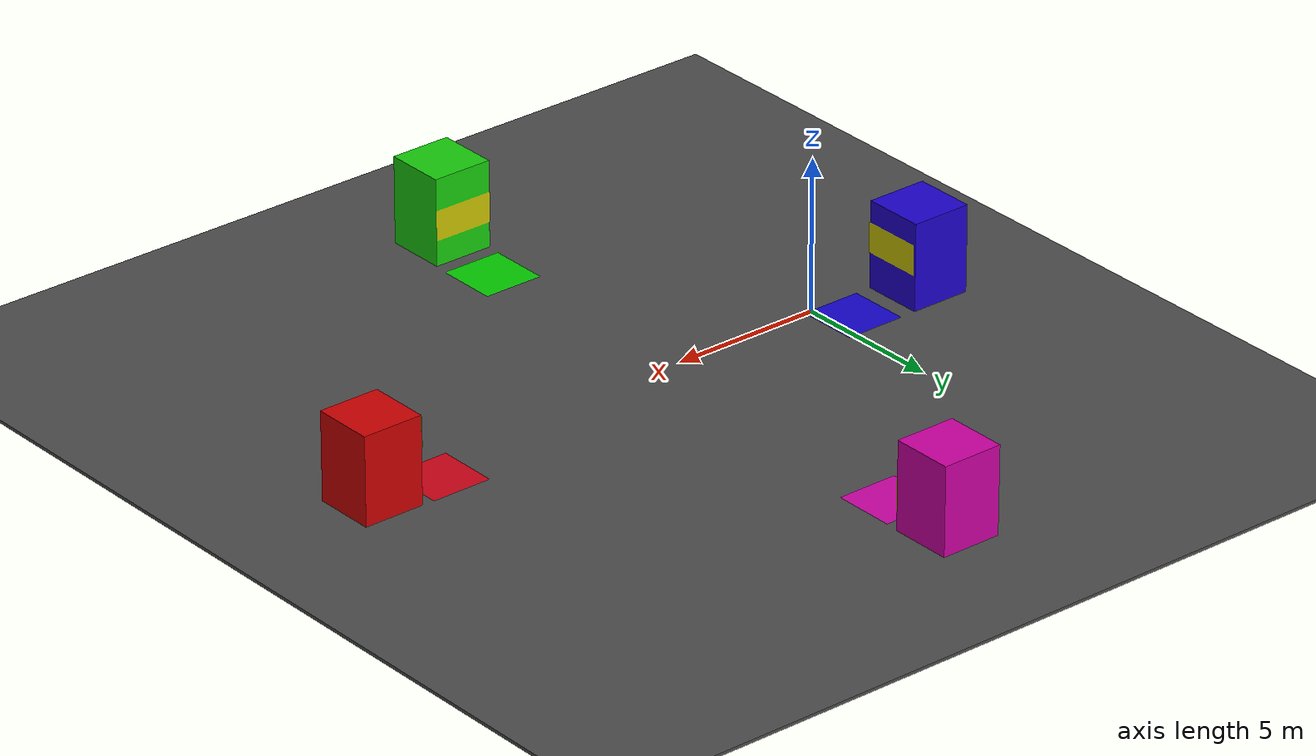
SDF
<sdf version="1.7">
 <world name="default">
  <light name="sun" type="directional">
   <pose>0 0 10 0 -0 0</pose>
   <diffuse>0.8 0.8 0.8 1</diffuse>
   <specular>0.2 0.2 0.2 1</specular>
   <attenuation>
    <range>1000</range>
    <constant>0.9</constant>
    <linear>0.01</linear>
    <quadratic>0.001</quadratic>
   </attenuation>
   <direction>-0.5 0.1 -0.9</direction>
   <spot><inner_angle>0</inner_angle><outer_angle>0</outer_angle><falloff>0</falloff></spot>
  </light>
  <model name="ground_plane">
   <static>1</static>
   <link name="link">
    <collision name="collision">
     <geometry><plane><normal>0 0 1</normal><size>100 100</size></plane></geometry>
     <surface>
      <contact><collide_bitmask>65535</collide_bitmask></contact>
      <friction><ode><mu>100</mu><mu2>50</mu2></ode></friction>
     </surface>
    </collision>
    <visual name="visual">
     <cast_shadows>0</cast_shadows>
     <geometry><plane><normal>0 0 1</normal><size>100 100</size></plane></geometry>
     <material>
      <script><uri>file://media/materials/scripts/gazebo.material</uri><name>Gazebo/Grey</name></script>
     </material>
    </visual>
   </link>
  </model>
  <model name="asphalt_plane">
   <static>1</static>
   <link name="link">
    <collision name="collision"><geometry><box><size>200 200 0.1</size></box></geometry></collision>
    <visual name="visual">
     <cast_shadows>0</cast_shadows>
     <geometry><box><size>200 200 0.1</size></box></geometry>
     <material>
      <script>
       <uri>model://asphalt_plane/materials/scripts</uri>
       <uri>model://asphalt_plane/materials/textures</uri>
       <name>vrc/asphalt</name>
      </script>
     </material>
    </visual>
   </link>
  </model>
  <model name="Arena KRTI 2020 1.5 Kali Lipat">
   <pose>5.50983 0.979914 0.06 0 -0 3.14159</pose>
   <static>1</static>
   <link name="link">
    <collision name="collision">
     <geometry><mesh><uri>model://temp_world/meshes/mesh.dae</uri></mesh></geometry>
    </collision>
    <visual name="visual"><geometry><mesh><uri>model://temp_world/meshes/mesh.dae</uri></mesh></geometry></visual>
   </link>
  </model>
  <physics name="default_physics" default="0" type="ode">
   <ode>
    <solver>
     <type>quick</type>
     <iters>10</iters>
     <sor>1.3</sor>
     <use_dynamic_moi_rescaling>0</use_dynamic_moi_rescaling>
    </solver>
    <constraints>
     <cfm>0</cfm>
     <erp>0.2</erp>
     <contact_max_correcting_vel>100</contact_max_correcting_vel>
     <contact_surface_layer>0.001</contact_surface_layer>
    </constraints>
   </ode>
   <max_step_size>0.004</max_step_size>
   <real_time_factor>1</real_time_factor>
   <real_time_update_rate>250</real_time_update_rate>
  </physics>
  <gravity>0 0 -9.8066</gravity>
  <magnetic_field>6e-06 2.3e-05 -4.2e-05</magnetic_field>
  <atmosphere type="adiabatic"/>
  <scene><ambient>0.4 0.4 0.4 1</ambient><background>0.7 0.7 0.7 1</background><shadows>1</shadows></scene>
  <spherical_coordinates>
   <surface_model>EARTH_WGS84</surface_model>
   <latitude_deg>0</latitude_deg>
   <longitude_deg>0</longitude_deg>
   <elevation>0</elevation>
   <heading_deg>0</heading_deg>
  </spherical_coordinates>
  <light name="user_directional_light_0" type="directional">
   <pose>3.0938 1.9335 1 0 -0 0</pose>
   <diffuse>0.5 0.5 0.5 1</diffuse>
   <specular>0.1 0.1 0.1 1</specular>
   <direction>0.1 0.1 -0.9</direction>
   <attenuation>
    <range>20</range>
    <constant>0.5</constant>
    <linear>0.01</linear>
    <quadratic>0.001</quadratic>
   </attenuation>
  </light>
  <light name="user_directional_light_1" type="directional">
   <pose>1.4728 -1.0825 1 0 -0 0</pose>
   <diffuse>0.5 0.5 0.5 1</diffuse>
   <specular>0.1 0.1 0.1 1</specular>
   <direction>0.1 0.1 -0.9</direction>
   <attenuation>
    <range>20</range>
    <constant>0.5</constant>
    <linear>0.01</linear>
    <quadratic>0.001</quadratic>
   </attenuation>
  </light>
  <light name="user_directional_light_2" type="directional">
   <pose>-0.928265 3.931 1 0 -0 0</pose>
   <diffuse>0.5 0.5 0.5 1</diffuse>
   <specular>0.1 0.1 0.1 1</specular>
   <direction>0.1 0.1 -0.9</direction>
   <attenuation>
    <range>20</range>
    <constant>0.5</constant>
    <linear>0.01</linear>
    <quadratic>0.001</quadratic>
   </attenuation>
  </light>
  <light name="user_directional_light_3" type="directional">
   <pose>1.17158 1.29039 1 0 -0 0</pose>
   <diffuse>0.5 0.5 0.5 1</diffuse>
   <specular>0.1 0.1 0.1 1</specular>
   <direction>0.1 0.1 -0.9</direction>
   <attenuation>
    <range>20</range>
    <constant>0.5</constant>
    <linear>0.01</linear>
    <quadratic>0.001</quadratic>
   </attenuation>
  </light>
  <light name="user_directional_light_4" type="directional">
   <pose>4.23079 -2.24866 1 0 -0 0</pose>
   <diffuse>0.5 0.5 0.5 1</diffuse>
   <specular>0.1 0.1 0.1 1</specular>
   <direction>0.1 0.1 -0.9</direction>
   <attenuation>
    <range>20</range>
    <constant>0.5</constant>
    <linear>0.01</linear>
    <quadratic>0.001</quadratic>
   </attenuation>
  </light>
  <light name="user_directional_light_5" type="directional">
   <pose>-3.89399 6.07404 1 0 -0 0</pose>
   <diffuse>0.5 0.5 0.5 1</diffuse>
   <specular>0.1 0.1 0.1 1</specular>
   <direction>0.1 0.1 -0.9</direction>
   <attenuation>
    <range>20</range>
    <constant>0.5</constant>
    <linear>0.01</linear>
    <quadratic>0.001</quadratic>
   </attenuation>
  </light>
  <light name="user_directional_light_6" type="directional">
   <pose>4.62613 -3.35621 1 0 -0 0</pose>
   <diffuse>0.5 0.5 0.5 1</diffuse>
   <specular>0.1 0.1 0.1 1</specular>
   <direction>0.1 0.1 -0.9</direction>
   <attenuation>
    <range>20</range>
    <constant>0.5</constant>
    <linear>0.01</linear>
    <quadratic>0.001</quadratic>
   </attenuation>
  </light>
  <light name="user_directional_light_7" type="directional">
   <pose>5.5573 1.96118 1 0 -0 0</pose>
   <diffuse>0.5 0.5 0.5 1</diffuse>
   <specular>0.1 0.1 0.1 1</specular>
   <direction>0.1 0.1 -0.9</direction>
   <attenuation>
    <range>20</range>
    <constant>0.5</constant>
    <linear>0.01</linear>
    <quadratic>0.001</quadratic>
   </attenuation>
  </light>
  <light name="user_directional_light_8" type="directional">
   <pose>6.57775 4.08964 1 0 -0 0</pose>
   <diffuse>0.5 0.5 0.5 1</diffuse>
   <specular>0.1 0.1 0.1 1</specular>
   <direction>0.1 0.1 -0.9</direction>
   <attenuation>
    <range>20</range>
    <constant>0.5</constant>
    <linear>0.01</linear>
    <quadratic>0.001</quadratic>
   </attenuation>
  </light>
  <light name="user_directional_light_9" type="directional">
   <pose>7.86202 -0.072826 1 0 -0 0</pose>
   <diffuse>0.5 0.5 0.5 1</diffuse>
   <specular>0.1 0.1 0.1 1</specular>
   <direction>0.1 0.1 -0.9</direction>
   <attenuation>
    <range>20</range>
    <constant>0.5</constant>
    <linear>0.01</linear>
    <quadratic>0.001</quadratic>
   </attenuation>
  </light>
  <light name="user_point_light_0" type="point">
   <pose>-1.51769 1.1919 1 0 -0 0</pose>
   <diffuse>0.5 0.5 0.5 1</diffuse>
   <specular>0.1 0.1 0.1 1</specular>
   <attenuation>
    <range>20</range>
    <constant>0.5</constant>
    <linear>0.01</linear>
    <quadratic>0.001</quadratic>
   </attenuation>
   <cast_shadows>0</cast_shadows>
   <direction>0 0 -1</direction>
  </light>
  <light name="user_point_light_1" type="point">
   <pose>-1.43109 0.470679 1 0 -0 0</pose>
   <diffuse>0.5 0.5 0.5 1</diffuse>
   <specular>0.1 0.1 0.1 1</specular>
   <attenuation>
    <range>20</range>
    <constant>0.5</constant>
    <linear>0.01</linear>
    <quadratic>0.001</quadratic>
   </attenuation>
   <cast_shadows>0</cast_shadows>
   <direction>0 0 -1</direction>
  </light>
  <light name="user_point_light_2" type="point">
   <pose>-0.879846 1.02255 1 0 -0 0</pose>
   <diffuse>0.5 0.5 0.5 1</diffuse>
   <specular>0.1 0.1 0.1 1</specular>
   <attenuation>
    <range>20</range>
    <constant>0.5</constant>
    <linear>0.01</linear>
    <quadratic>0.001</quadratic>
   </attenuation>
   <cast_shadows>0</cast_shadows>
   <direction>0 0 -1</direction>
  </light>
  <light name="user_point_light_3" type="point">
   <pose>-1.28228 2.3869 1 0 -0 0</pose>
   <diffuse>0.5 0.5 0.5 1</diffuse>
   <specular>0.1 0.1 0.1 1</specular>
   <attenuation>
    <range>20</range>
    <constant>0.5</constant>
    <linear>0.01</linear>
    <quadratic>0.001</quadratic>
   </attenuation>
   <cast_shadows>0</cast_shadows>
   <direction>0 0 -1</direction>
  </light>
  <light name="user_point_light_4" type="point">
   <pose>-1.23472 0.105695 1 0 -0 0</pose>
   <diffuse>0.5 0.5 0.5 1</diffuse>
   <specular>0.1 0.1 0.1 1</specular>
   <attenuation>
    <range>20</range>
    <constant>0.5</constant>
    <linear>0.01</linear>
    <quadratic>0.001</quadratic>
   </attenuation>
   <cast_shadows>0</cast_shadows>
   <direction>0 0 -1</direction>
  </light>
  <light name="user_point_light_5" type="point">
   <pose>-0.001686 -0.580163 1 0 -0 0</pose>
   <diffuse>0.5 0.5 0.5 1</diffuse>
   <specular>0.1 0.1 0.1 1</specular>
   <attenuation>
    <range>20</range>
    <constant>0.5</constant>
    <linear>0.01</linear>
    <quadratic>0.001</quadratic>
   </attenuation>
   <cast_shadows>0</cast_shadows>
   <direction>0 0 -1</direction>
  </light>
  <light name="user_point_light_6" type="point">
   <pose>7.04985 9.64252 1 0 -0 0</pose>
   <diffuse>0.5 0.5 0.5 1</diffuse>
   <specular>0.1 0.1 0.1 1</specular>
   <attenuation>
    <range>20</range>
    <constant>0.5</constant>
    <linear>0.01</linear>
    <quadratic>0.001</quadratic>
   </attenuation>
   <cast_shadows>0</cast_shadows>
   <direction>0 0 -1</direction>
  </light>
  <light name="user_point_light_7" type="point">
   <pose>6.45131 10.9903 1 0 -0 0</pose>
   <diffuse>0.5 0.5 0.5 1</diffuse>
   <specular>0.1 0.1 0.1 1</specular>
   <attenuation>
    <range>20</range>
    <constant>0.5</constant>
    <linear>0.01</linear>
    <quadratic>0.001</quadratic>
   </attenuation>
   <cast_shadows>0</cast_shadows>
   <direction>0 0 -1</direction>
  </light>
  <light name="user_point_light_8" type="point">
   <pose>15.2393 0.805734 1 0 -0 0</pose>
   <diffuse>0.5 0.5 0.5 1</diffuse>
   <specular>0.1 0.1 0.1 1</specular>
   <attenuation>
    <range>20</range>
    <constant>0.5</constant>
    <linear>0.01</linear>
    <quadratic>0.001</quadratic>
   </attenuation>
   <cast_shadows>0</cast_shadows>
   <direction>0 0 -1</direction>
  </light>
  <light name="user_point_light_9" type="point">
   <pose>15.1253 0.151627 1 0 -0 0</pose>
   <diffuse>0.5 0.5 0.5 1</diffuse>
   <specular>0.1 0.1 0.1 1</specular>
   <attenuation>
    <range>20</range>
    <constant>0.5</constant>
    <linear>0.01</linear>
    <quadratic>0.001</quadratic>
   </attenuation>
   <cast_shadows>0</cast_shadows>
   <direction>0 0 -1</direction>
  </light>
  <light name="user_point_light_10" type="point">
   <pose>7.59181 -9.02567 1 0 -0 0</pose>
   <diffuse>0.5 0.5 0.5 1</diffuse>
   <specular>0.1 0.1 0.1 1</specular>
   <attenuation>
    <range>20</range>
    <constant>0.5</constant>
    <linear>0.01</linear>
    <quadratic>0.001</quadratic>
   </attenuation>
   <cast_shadows>0</cast_shadows>
   <direction>0 0 -1</direction>
  </light>
 </world>
</sdf>
